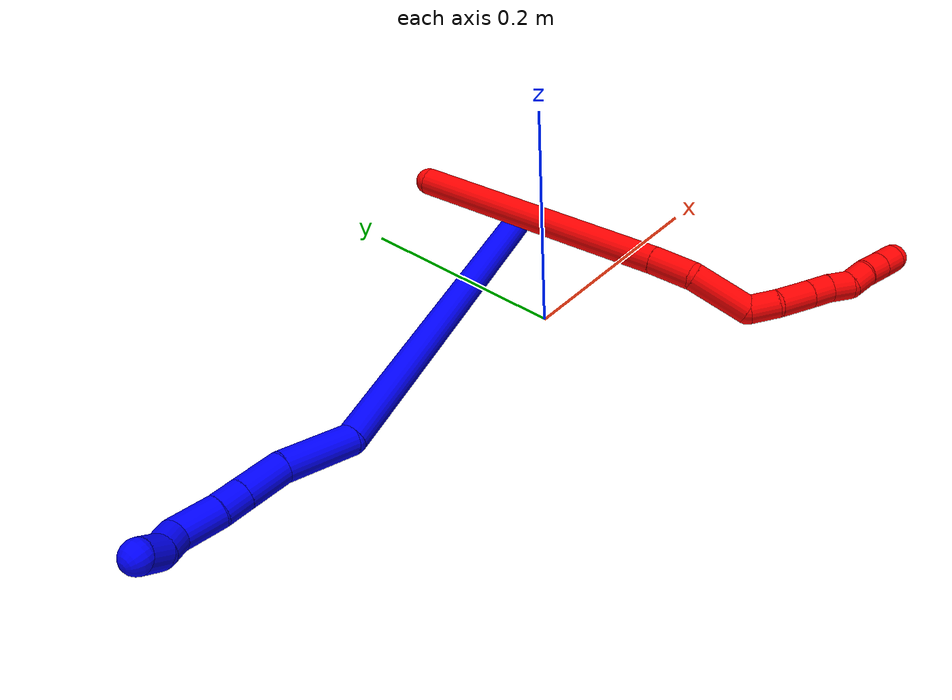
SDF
<sdf version="1.7">
 <world name="default">
  <model name="1">
   <static>0</static>
   <link name="1">
    <collision name="collision-cylinder-e_1_1_4">
     <pose>-0.03386 -0.010622 0.151337 0.070076 -0.21959 -0.007728</pose>
     <geometry><cylinder><radius>0.0125</radius><length>0.310884</length></cylinder></geometry>
     <surface>
      <friction><ode><mu>1.16</mu><mu2>1.16</mu2><slip1>0</slip1><slip2>0</slip2></ode></friction>
      <contact><ode><kp>1e+06</kp><kd>1</kd><max_vel>0</max_vel><min_depth>0.001</min_depth></ode></contact>
     </surface>
    </collision>
    <visual name="visual-cylinder-e_1_1_4">
     <pose>-0.03386 -0.010622 0.151337 0.070076 -0.21959 -0.007728</pose>
     <geometry><cylinder><radius>0.0125</radius><length>0.310884</length></cylinder></geometry>
     <material><ambient>0 0 1 1</ambient></material>
    </visual>
    <collision name="collision-cylinder-e_2_4_5">
     <pose>-0.06075 -0.018935 0.331298 -0.080514 0.238074 -0.009635</pose>
     <geometry><cylinder><radius>0.0125</radius><length>0.059103</length></cylinder></geometry>
     <surface>
      <friction><ode><mu>1.16</mu><mu2>1.16</mu2><slip1>0</slip1><slip2>0</slip2></ode></friction>
      <contact><ode><kp>1e+06</kp><kd>1</kd><max_vel>0</max_vel><min_depth>0.001</min_depth></ode></contact>
     </surface>
    </collision>
    <visual name="visual-cylinder-e_2_4_5">
     <pose>-0.06075 -0.018935 0.331298 -0.080514 0.238074 -0.009635</pose>
     <geometry><cylinder><radius>0.0125</radius><length>0.059103</length></cylinder></geometry>
     <material><ambient>0 0 1 1</ambient></material>
    </visual>
    <collision name="collision-cylinder-e_3_5_6">
     <pose>-0.053308 -0.015807 0.377663 -0.046092 0.026617 -0.000614</pose>
     <geometry><cylinder><radius>0.0125</radius><length>0.035529</length></cylinder></geometry>
     <surface>
      <friction><ode><mu>1.16</mu><mu2>1.16</mu2><slip1>0</slip1><slip2>0</slip2></ode></friction>
      <contact><ode><kp>1e+06</kp><kd>1</kd><max_vel>0</max_vel><min_depth>0.001</min_depth></ode></contact>
     </surface>
    </collision>
    <visual name="visual-cylinder-e_3_5_6">
     <pose>-0.053308 -0.015807 0.377663 -0.046092 0.026617 -0.000614</pose>
     <geometry><cylinder><radius>0.0125</radius><length>0.035529</length></cylinder></geometry>
     <material><ambient>0 0 1 1</ambient></material>
    </visual>
    <collision name="collision-cylinder-e_4_6_7">
     <pose>-0.052601 -0.014761 0.405688 -0.022123 0.022843 -0.000253</pose>
     <geometry><cylinder><radius>0.0125</radius><length>0.020581</length></cylinder></geometry>
     <surface>
      <friction><ode><mu>1.16</mu><mu2>1.16</mu2><slip1>0</slip1><slip2>0</slip2></ode></friction>
      <contact><ode><kp>1e+06</kp><kd>1</kd><max_vel>0</max_vel><min_depth>0.001</min_depth></ode></contact>
     </surface>
    </collision>
    <visual name="visual-cylinder-e_4_6_7">
     <pose>-0.052601 -0.014761 0.405688 -0.022123 0.022843 -0.000253</pose>
     <geometry><cylinder><radius>0.0125</radius><length>0.020581</length></cylinder></geometry>
     <material><ambient>0 0 1 1</ambient></material>
    </visual>
    <collision name="collision-cylinder-e_5_7_8">
     <pose>-0.050371 -0.01308 0.432483 -0.087859 0.119751 -0.00527</pose>
     <geometry><cylinder><radius>0.0125</radius><length>0.033388</length></cylinder></geometry>
     <surface>
      <friction><ode><mu>1.16</mu><mu2>1.16</mu2><slip1>0</slip1><slip2>0</slip2></ode></friction>
      <contact><ode><kp>1e+06</kp><kd>1</kd><max_vel>0</max_vel><min_depth>0.001</min_depth></ode></contact>
     </surface>
    </collision>
    <visual name="visual-cylinder-e_5_7_8">
     <pose>-0.050371 -0.01308 0.432483 -0.087859 0.119751 -0.00527</pose>
     <geometry><cylinder><radius>0.0125</radius><length>0.033388</length></cylinder></geometry>
     <material><ambient>0 0 1 1</ambient></material>
    </visual>
    <collision name="collision-cylinder-e_6_8_9">
     <pose>-0.049725 -0.016346 0.457891 0.487803 -0.132997 -0.033143</pose>
     <geometry><cylinder><radius>0.0125</radius><length>0.020324</length></cylinder></geometry>
     <surface>
      <friction><ode><mu>1.16</mu><mu2>1.16</mu2><slip1>0</slip1><slip2>0</slip2></ode></friction>
      <contact><ode><kp>1e+06</kp><kd>1</kd><max_vel>0</max_vel><min_depth>0.001</min_depth></ode></contact>
     </surface>
    </collision>
    <visual name="visual-cylinder-e_6_8_9">
     <pose>-0.049725 -0.016346 0.457891 0.487803 -0.132997 -0.033143</pose>
     <geometry><cylinder><radius>0.0125</radius><length>0.020324</length></cylinder></geometry>
     <material><ambient>0 0 1 1</ambient></material>
    </visual>
    <collision name="collision-cylinder-e_7_9_2">
     <pose>-0.048088 -0.026011 0.475069 0.538265 0.300073 0.083346</pose>
     <geometry><cylinder><radius>0.0125</radius><length>0.020192</length></cylinder></geometry>
     <surface>
      <friction><ode><mu>1.16</mu><mu2>1.16</mu2><slip1>0</slip1><slip2>0</slip2></ode></friction>
      <contact><ode><kp>1e+06</kp><kd>1</kd><max_vel>0</max_vel><min_depth>0.001</min_depth></ode></contact>
     </surface>
    </collision>
    <visual name="visual-cylinder-e_7_9_2">
     <pose>-0.048088 -0.026011 0.475069 0.538265 0.300073 0.083346</pose>
     <geometry><cylinder><radius>0.0125</radius><length>0.020192</length></cylinder></geometry>
     <material><ambient>0 0 1 1</ambient></material>
    </visual>
    <collision name="collision-sphere-2">
     <pose>-0.045104 -0.030955 0.48335 0 -0 0</pose>
     <geometry><sphere><radius>0.0125</radius></sphere></geometry>
     <surface>
      <friction><ode><mu>1.16</mu><mu2>1.16</mu2><slip1>0</slip1><slip2>0</slip2></ode></friction>
      <contact><ode><kp>1e+06</kp><kd>1</kd><max_vel>0</max_vel><min_depth>0.001</min_depth></ode></contact>
     </surface>
    </collision>
    <visual name="visual-sphere-2">
     <pose>-0.045104 -0.030955 0.48335 0 -0 0</pose>
     <geometry><sphere><radius>0.0125</radius></sphere></geometry>
     <material><ambient>0 0 1 1</ambient></material>
    </visual>
    <collision name="collision-sphere-9">
     <pose>-0.051072 -0.021067 0.466788 0 -0 0</pose>
     <geometry><sphere><radius>0.0125</radius></sphere></geometry>
     <surface>
      <friction><ode><mu>1.16</mu><mu2>1.16</mu2><slip1>0</slip1><slip2>0</slip2></ode></friction>
      <contact><ode><kp>1e+06</kp><kd>1</kd><max_vel>0</max_vel><min_depth>0.001</min_depth></ode></contact>
     </surface>
    </collision>
    <visual name="visual-sphere-9">
     <pose>-0.051072 -0.021067 0.466788 0 -0 0</pose>
     <geometry><sphere><radius>0.0125</radius></sphere></geometry>
     <material><ambient>0 0 1 1</ambient></material>
    </visual>
    <collision name="collision-sphere-4">
     <pose>-0.06772 -0.021245 0.302674 0 -0 0</pose>
     <geometry><sphere><radius>0.0125</radius></sphere></geometry>
     <surface>
      <friction><ode><mu>1.16</mu><mu2>1.16</mu2><slip1>0</slip1><slip2>0</slip2></ode></friction>
      <contact><ode><kp>1e+06</kp><kd>1</kd><max_vel>0</max_vel><min_depth>0.001</min_depth></ode></contact>
     </surface>
    </collision>
    <visual name="visual-sphere-4">
     <pose>-0.06772 -0.021245 0.302674 0 -0 0</pose>
     <geometry><sphere><radius>0.0125</radius></sphere></geometry>
     <material><ambient>0 0 1 1</ambient></material>
    </visual>
    <collision name="collision-sphere-1">
     <geometry><sphere><radius>0.0125</radius></sphere></geometry>
     <surface>
      <friction><ode><mu>1.16</mu><mu2>1.16</mu2><slip1>0</slip1><slip2>0</slip2></ode></friction>
      <contact><ode><kp>1e+06</kp><kd>1</kd><max_vel>0</max_vel><min_depth>0.001</min_depth></ode></contact>
     </surface>
    </collision>
    <visual name="visual-sphere-1">
     <geometry><sphere><radius>0.0125</radius></sphere></geometry>
     <material><ambient>0 0 1 1</ambient></material>
    </visual>
    <collision name="collision-sphere-8">
     <pose>-0.048377 -0.011625 0.448993 0 -0 0</pose>
     <geometry><sphere><radius>0.0125</radius></sphere></geometry>
     <surface>
      <friction><ode><mu>1.16</mu><mu2>1.16</mu2><slip1>0</slip1><slip2>0</slip2></ode></friction>
      <contact><ode><kp>1e+06</kp><kd>1</kd><max_vel>0</max_vel><min_depth>0.001</min_depth></ode></contact>
     </surface>
    </collision>
    <visual name="visual-sphere-8">
     <pose>-0.048377 -0.011625 0.448993 0 -0 0</pose>
     <geometry><sphere><radius>0.0125</radius></sphere></geometry>
     <material><ambient>0 0 1 1</ambient></material>
    </visual>
    <collision name="collision-sphere-5">
     <pose>-0.053781 -0.016626 0.359923 0 -0 0</pose>
     <geometry><sphere><radius>0.0125</radius></sphere></geometry>
     <surface>
      <friction><ode><mu>1.16</mu><mu2>1.16</mu2><slip1>0</slip1><slip2>0</slip2></ode></friction>
      <contact><ode><kp>1e+06</kp><kd>1</kd><max_vel>0</max_vel><min_depth>0.001</min_depth></ode></contact>
     </surface>
    </collision>
    <visual name="visual-sphere-5">
     <pose>-0.053781 -0.016626 0.359923 0 -0 0</pose>
     <geometry><sphere><radius>0.0125</radius></sphere></geometry>
     <material><ambient>0 0 1 1</ambient></material>
    </visual>
    <collision name="collision-sphere-6">
     <pose>-0.052836 -0.014989 0.395402 0 -0 0</pose>
     <geometry><sphere><radius>0.0125</radius></sphere></geometry>
     <surface>
      <friction><ode><mu>1.16</mu><mu2>1.16</mu2><slip1>0</slip1><slip2>0</slip2></ode></friction>
      <contact><ode><kp>1e+06</kp><kd>1</kd><max_vel>0</max_vel><min_depth>0.001</min_depth></ode></contact>
     </surface>
    </collision>
    <visual name="visual-sphere-6">
     <pose>-0.052836 -0.014989 0.395402 0 -0 0</pose>
     <geometry><sphere><radius>0.0125</radius></sphere></geometry>
     <material><ambient>0 0 1 1</ambient></material>
    </visual>
    <collision name="collision-sphere-7">
     <pose>-0.052366 -0.014534 0.415973 0 -0 0</pose>
     <geometry><sphere><radius>0.0125</radius></sphere></geometry>
     <surface>
      <friction><ode><mu>1.16</mu><mu2>1.16</mu2><slip1>0</slip1><slip2>0</slip2></ode></friction>
      <contact><ode><kp>1e+06</kp><kd>1</kd><max_vel>0</max_vel><min_depth>0.001</min_depth></ode></contact>
     </surface>
    </collision>
    <visual name="visual-sphere-7">
     <pose>-0.052366 -0.014534 0.415973 0 -0 0</pose>
     <geometry><sphere><radius>0.0125</radius></sphere></geometry>
     <material><ambient>0 0 1 1</ambient></material>
    </visual>
    <inertial>
     <pose>-0.041514 -0.013162 0.243469 0 -0 0</pose>
     <mass>0.5</mass>
     <inertia>
      <ixx>0.002466</ixx>
      <ixy>0</ixy>
      <ixz>0</ixz>
      <iyy>0.002522</iyy>
      <iyz>0</iyz>
      <izz>0.000751</izz>
     </inertia>
    </inertial>
   </link>
   <pose>0.086418 0.105026 0.011497 -1.43264 -0.747129 1.56791</pose>
  </model>
  <model name="2">
   <static>0</static>
   <link name="2">
    <collision name="collision-cylinder-e_1_1_4">
     <pose>0.00181 -0.098809 0.072326 0.938934 0.014782 0.007499</pose>
     <geometry><cylinder><radius>0.0125</radius><length>0.244929</length></cylinder></geometry>
     <surface>
      <friction><ode><mu>1.16</mu><mu2>1.16</mu2><slip1>0</slip1><slip2>0</slip2></ode></friction>
      <contact><ode><kp>1e+06</kp><kd>1</kd><max_vel>0</max_vel><min_depth>0.001</min_depth></ode></contact>
     </surface>
    </collision>
    <visual name="visual-cylinder-e_1_1_4">
     <pose>0.00181 -0.098809 0.072326 0.938934 0.014782 0.007499</pose>
     <geometry><cylinder><radius>0.0125</radius><length>0.244929</length></cylinder></geometry>
     <material><ambient>1 0 0 1</ambient></material>
    </visual>
    <collision name="collision-cylinder-e_2_4_5">
     <pose>0.004131 -0.214495 0.155416 1.00301 0.025502 0.013982</pose>
     <geometry><cylinder><radius>0.0125</radius><length>0.040048</length></cylinder></geometry>
     <surface>
      <friction><ode><mu>1.16</mu><mu2>1.16</mu2><slip1>0</slip1><slip2>0</slip2></ode></friction>
      <contact><ode><kp>1e+06</kp><kd>1</kd><max_vel>0</max_vel><min_depth>0.001</min_depth></ode></contact>
     </surface>
    </collision>
    <visual name="visual-cylinder-e_2_4_5">
     <pose>0.004131 -0.214495 0.155416 1.00301 0.025502 0.013982</pose>
     <geometry><cylinder><radius>0.0125</radius><length>0.040048</length></cylinder></geometry>
     <material><ambient>1 0 0 1</ambient></material>
    </visual>
    <collision name="collision-cylinder-e_3_5_6">
     <pose>0.015367 -0.247654 0.185288 0.705736 0.403757 0.150465</pose>
     <geometry><cylinder><radius>0.0125</radius><length>0.054598</length></cylinder></geometry>
     <surface>
      <friction><ode><mu>1.16</mu><mu2>1.16</mu2><slip1>0</slip1><slip2>0</slip2></ode></friction>
      <contact><ode><kp>1e+06</kp><kd>1</kd><max_vel>0</max_vel><min_depth>0.001</min_depth></ode></contact>
     </surface>
    </collision>
    <visual name="visual-cylinder-e_3_5_6">
     <pose>0.015367 -0.247654 0.185288 0.705736 0.403757 0.150465</pose>
     <geometry><cylinder><radius>0.0125</radius><length>0.054598</length></cylinder></geometry>
     <material><ambient>1 0 0 1</ambient></material>
    </visual>
    <collision name="collision-cylinder-e_4_6_7">
     <pose>0.023814 -0.266351 0.21722 0.186079 -0.172844 -0.016168</pose>
     <geometry><cylinder><radius>0.0125</radius><length>0.026495</length></cylinder></geometry>
     <surface>
      <friction><ode><mu>1.16</mu><mu2>1.16</mu2><slip1>0</slip1><slip2>0</slip2></ode></friction>
      <contact><ode><kp>1e+06</kp><kd>1</kd><max_vel>0</max_vel><min_depth>0.001</min_depth></ode></contact>
     </surface>
    </collision>
    <visual name="visual-cylinder-e_4_6_7">
     <pose>0.023814 -0.266351 0.21722 0.186079 -0.172844 -0.016168</pose>
     <geometry><cylinder><radius>0.0125</radius><length>0.026495</length></cylinder></geometry>
     <material><ambient>1 0 0 1</ambient></material>
    </visual>
    <collision name="collision-cylinder-e_5_7_8">
     <pose>0.020434 -0.26765 0.246345 -0.068286 -0.067302 0.0023</pose>
     <geometry><cylinder><radius>0.0125</radius><length>0.032749</length></cylinder></geometry>
     <surface>
      <friction><ode><mu>1.16</mu><mu2>1.16</mu2><slip1>0</slip1><slip2>0</slip2></ode></friction>
      <contact><ode><kp>1e+06</kp><kd>1</kd><max_vel>0</max_vel><min_depth>0.001</min_depth></ode></contact>
     </surface>
    </collision>
    <visual name="visual-cylinder-e_5_7_8">
     <pose>0.020434 -0.26765 0.246345 -0.068286 -0.067302 0.0023</pose>
     <geometry><cylinder><radius>0.0125</radius><length>0.032749</length></cylinder></geometry>
     <material><ambient>1 0 0 1</ambient></material>
    </visual>
    <collision name="collision-cylinder-e_6_8_9">
     <pose>0.018225 -0.266083 0.272897 -0.044145 -0.107483 0.002375</pose>
     <geometry><cylinder><radius>0.0125</radius><length>0.020645</length></cylinder></geometry>
     <surface>
      <friction><ode><mu>1.16</mu><mu2>1.16</mu2><slip1>0</slip1><slip2>0</slip2></ode></friction>
      <contact><ode><kp>1e+06</kp><kd>1</kd><max_vel>0</max_vel><min_depth>0.001</min_depth></ode></contact>
     </surface>
    </collision>
    <visual name="visual-cylinder-e_6_8_9">
     <pose>0.018225 -0.266083 0.272897 -0.044145 -0.107483 0.002375</pose>
     <geometry><cylinder><radius>0.0125</radius><length>0.020645</length></cylinder></geometry>
     <material><ambient>1 0 0 1</ambient></material>
    </visual>
    <collision name="collision-cylinder-e_7_9_10">
     <pose>0.016321 -0.266932 0.293205 0.128845 -0.078406 -0.005061</pose>
     <geometry><cylinder><radius>0.0125</radius><length>0.020342</length></cylinder></geometry>
     <surface>
      <friction><ode><mu>1.16</mu><mu2>1.16</mu2><slip1>0</slip1><slip2>0</slip2></ode></friction>
      <contact><ode><kp>1e+06</kp><kd>1</kd><max_vel>0</max_vel><min_depth>0.001</min_depth></ode></contact>
     </surface>
    </collision>
    <visual name="visual-cylinder-e_7_9_10">
     <pose>0.016321 -0.266932 0.293205 0.128845 -0.078406 -0.005061</pose>
     <geometry><cylinder><radius>0.0125</radius><length>0.020342</length></cylinder></geometry>
     <material><ambient>1 0 0 1</ambient></material>
    </visual>
    <collision name="collision-cylinder-e_8_10_11">
     <pose>0.012773 -0.265425 0.312551 -0.293783 -0.276233 0.041127</pose>
     <geometry><cylinder><radius>0.0125</radius><length>0.020177</length></cylinder></geometry>
     <surface>
      <friction><ode><mu>1.16</mu><mu2>1.16</mu2><slip1>0</slip1><slip2>0</slip2></ode></friction>
      <contact><ode><kp>1e+06</kp><kd>1</kd><max_vel>0</max_vel><min_depth>0.001</min_depth></ode></contact>
     </surface>
    </collision>
    <visual name="visual-cylinder-e_8_10_11">
     <pose>0.012773 -0.265425 0.312551 -0.293783 -0.276233 0.041127</pose>
     <geometry><cylinder><radius>0.0125</radius><length>0.020177</length></cylinder></geometry>
     <material><ambient>1 0 0 1</ambient></material>
    </visual>
    <collision name="collision-cylinder-e_9_11_12">
     <pose>0.009394 -0.259607 0.331363 -0.305923 -0.062779 0.009681</pose>
     <geometry><cylinder><radius>0.0125</radius><length>0.020011</length></cylinder></geometry>
     <surface>
      <friction><ode><mu>1.16</mu><mu2>1.16</mu2><slip1>0</slip1><slip2>0</slip2></ode></friction>
      <contact><ode><kp>1e+06</kp><kd>1</kd><max_vel>0</max_vel><min_depth>0.001</min_depth></ode></contact>
     </surface>
    </collision>
    <visual name="visual-cylinder-e_9_11_12">
     <pose>0.009394 -0.259607 0.331363 -0.305923 -0.062779 0.009681</pose>
     <geometry><cylinder><radius>0.0125</radius><length>0.020011</length></cylinder></geometry>
     <material><ambient>1 0 0 1</ambient></material>
    </visual>
    <collision name="collision-cylinder-e_10_12_2">
     <pose>0.007921 -0.2536 0.350391 -0.305597 -0.084631 0.013041</pose>
     <geometry><cylinder><radius>0.0125</radius><length>0.020007</length></cylinder></geometry>
     <surface>
      <friction><ode><mu>1.16</mu><mu2>1.16</mu2><slip1>0</slip1><slip2>0</slip2></ode></friction>
      <contact><ode><kp>1e+06</kp><kd>1</kd><max_vel>0</max_vel><min_depth>0.001</min_depth></ode></contact>
     </surface>
    </collision>
    <visual name="visual-cylinder-e_10_12_2">
     <pose>0.007921 -0.2536 0.350391 -0.305597 -0.084631 0.013041</pose>
     <geometry><cylinder><radius>0.0125</radius><length>0.020007</length></cylinder></geometry>
     <material><ambient>1 0 0 1</ambient></material>
    </visual>
    <collision name="collision-sphere-2">
     <pose>0.007075 -0.250601 0.359897 0 -0 0</pose>
     <geometry><sphere><radius>0.0125</radius></sphere></geometry>
     <surface>
      <friction><ode><mu>1.16</mu><mu2>1.16</mu2><slip1>0</slip1><slip2>0</slip2></ode></friction>
      <contact><ode><kp>1e+06</kp><kd>1</kd><max_vel>0</max_vel><min_depth>0.001</min_depth></ode></contact>
     </surface>
    </collision>
    <visual name="visual-sphere-2">
     <pose>0.007075 -0.250601 0.359897 0 -0 0</pose>
     <geometry><sphere><radius>0.0125</radius></sphere></geometry>
     <material><ambient>1 0 0 1</ambient></material>
    </visual>
    <collision name="collision-sphere-12">
     <pose>0.008766 -0.256599 0.340885 0 -0 0</pose>
     <geometry><sphere><radius>0.0125</radius></sphere></geometry>
     <surface>
      <friction><ode><mu>1.16</mu><mu2>1.16</mu2><slip1>0</slip1><slip2>0</slip2></ode></friction>
      <contact><ode><kp>1e+06</kp><kd>1</kd><max_vel>0</max_vel><min_depth>0.001</min_depth></ode></contact>
     </surface>
    </collision>
    <visual name="visual-sphere-12">
     <pose>0.008766 -0.256599 0.340885 0 -0 0</pose>
     <geometry><sphere><radius>0.0125</radius></sphere></geometry>
     <material><ambient>1 0 0 1</ambient></material>
    </visual>
    <collision name="collision-sphere-11">
     <pose>0.010022 -0.262614 0.321841 0 -0 0</pose>
     <geometry><sphere><radius>0.0125</radius></sphere></geometry>
     <surface>
      <friction><ode><mu>1.16</mu><mu2>1.16</mu2><slip1>0</slip1><slip2>0</slip2></ode></friction>
      <contact><ode><kp>1e+06</kp><kd>1</kd><max_vel>0</max_vel><min_depth>0.001</min_depth></ode></contact>
     </surface>
    </collision>
    <visual name="visual-sphere-11">
     <pose>0.010022 -0.262614 0.321841 0 -0 0</pose>
     <geometry><sphere><radius>0.0125</radius></sphere></geometry>
     <material><ambient>1 0 0 1</ambient></material>
    </visual>
    <collision name="collision-sphere-10">
     <pose>0.015525 -0.268235 0.303261 0 -0 0</pose>
     <geometry><sphere><radius>0.0125</radius></sphere></geometry>
     <surface>
      <friction><ode><mu>1.16</mu><mu2>1.16</mu2><slip1>0</slip1><slip2>0</slip2></ode></friction>
      <contact><ode><kp>1e+06</kp><kd>1</kd><max_vel>0</max_vel><min_depth>0.001</min_depth></ode></contact>
     </surface>
    </collision>
    <visual name="visual-sphere-10">
     <pose>0.015525 -0.268235 0.303261 0 -0 0</pose>
     <geometry><sphere><radius>0.0125</radius></sphere></geometry>
     <material><ambient>1 0 0 1</ambient></material>
    </visual>
    <collision name="collision-sphere-9">
     <pose>0.017118 -0.26563 0.28315 0 -0 0</pose>
     <geometry><sphere><radius>0.0125</radius></sphere></geometry>
     <surface>
      <friction><ode><mu>1.16</mu><mu2>1.16</mu2><slip1>0</slip1><slip2>0</slip2></ode></friction>
      <contact><ode><kp>1e+06</kp><kd>1</kd><max_vel>0</max_vel><min_depth>0.001</min_depth></ode></contact>
     </surface>
    </collision>
    <visual name="visual-sphere-9">
     <pose>0.017118 -0.26563 0.28315 0 -0 0</pose>
     <geometry><sphere><radius>0.0125</radius></sphere></geometry>
     <material><ambient>1 0 0 1</ambient></material>
    </visual>
    <collision name="collision-sphere-4">
     <pose>0.00362 -0.197619 0.144651 0 -0 0</pose>
     <geometry><sphere><radius>0.0125</radius></sphere></geometry>
     <surface>
      <friction><ode><mu>1.16</mu><mu2>1.16</mu2><slip1>0</slip1><slip2>0</slip2></ode></friction>
      <contact><ode><kp>1e+06</kp><kd>1</kd><max_vel>0</max_vel><min_depth>0.001</min_depth></ode></contact>
     </surface>
    </collision>
    <visual name="visual-sphere-4">
     <pose>0.00362 -0.197619 0.144651 0 -0 0</pose>
     <geometry><sphere><radius>0.0125</radius></sphere></geometry>
     <material><ambient>1 0 0 1</ambient></material>
    </visual>
    <collision name="collision-sphere-1">
     <geometry><sphere><radius>0.0125</radius></sphere></geometry>
     <surface>
      <friction><ode><mu>1.16</mu><mu2>1.16</mu2><slip1>0</slip1><slip2>0</slip2></ode></friction>
      <contact><ode><kp>1e+06</kp><kd>1</kd><max_vel>0</max_vel><min_depth>0.001</min_depth></ode></contact>
     </surface>
    </collision>
    <visual name="visual-sphere-1">
     <geometry><sphere><radius>0.0125</radius></sphere></geometry>
     <material><ambient>1 0 0 1</ambient></material>
    </visual>
    <collision name="collision-sphere-8">
     <pose>0.019333 -0.266535 0.262644 0 -0 0</pose>
     <geometry><sphere><radius>0.0125</radius></sphere></geometry>
     <surface>
      <friction><ode><mu>1.16</mu><mu2>1.16</mu2><slip1>0</slip1><slip2>0</slip2></ode></friction>
      <contact><ode><kp>1e+06</kp><kd>1</kd><max_vel>0</max_vel><min_depth>0.001</min_depth></ode></contact>
     </surface>
    </collision>
    <visual name="visual-sphere-8">
     <pose>0.019333 -0.266535 0.262644 0 -0 0</pose>
     <geometry><sphere><radius>0.0125</radius></sphere></geometry>
     <material><ambient>1 0 0 1</ambient></material>
    </visual>
    <collision name="collision-sphere-5">
     <pose>0.004642 -0.231372 0.16618 0 -0 0</pose>
     <geometry><sphere><radius>0.0125</radius></sphere></geometry>
     <surface>
      <friction><ode><mu>1.16</mu><mu2>1.16</mu2><slip1>0</slip1><slip2>0</slip2></ode></friction>
      <contact><ode><kp>1e+06</kp><kd>1</kd><max_vel>0</max_vel><min_depth>0.001</min_depth></ode></contact>
     </surface>
    </collision>
    <visual name="visual-sphere-5">
     <pose>0.004642 -0.231372 0.16618 0 -0 0</pose>
     <geometry><sphere><radius>0.0125</radius></sphere></geometry>
     <material><ambient>1 0 0 1</ambient></material>
    </visual>
    <collision name="collision-sphere-6">
     <pose>0.026092 -0.263936 0.204395 0 -0 0</pose>
     <geometry><sphere><radius>0.0125</radius></sphere></geometry>
     <surface>
      <friction><ode><mu>1.16</mu><mu2>1.16</mu2><slip1>0</slip1><slip2>0</slip2></ode></friction>
      <contact><ode><kp>1e+06</kp><kd>1</kd><max_vel>0</max_vel><min_depth>0.001</min_depth></ode></contact>
     </surface>
    </collision>
    <visual name="visual-sphere-6">
     <pose>0.026092 -0.263936 0.204395 0 -0 0</pose>
     <geometry><sphere><radius>0.0125</radius></sphere></geometry>
     <material><ambient>1 0 0 1</ambient></material>
    </visual>
    <collision name="collision-sphere-7">
     <pose>0.021535 -0.268765 0.230045 0 -0 0</pose>
     <geometry><sphere><radius>0.0125</radius></sphere></geometry>
     <surface>
      <friction><ode><mu>1.16</mu><mu2>1.16</mu2><slip1>0</slip1><slip2>0</slip2></ode></friction>
      <contact><ode><kp>1e+06</kp><kd>1</kd><max_vel>0</max_vel><min_depth>0.001</min_depth></ode></contact>
     </surface>
    </collision>
    <visual name="visual-sphere-7">
     <pose>0.021535 -0.268765 0.230045 0 -0 0</pose>
     <geometry><sphere><radius>0.0125</radius></sphere></geometry>
     <material><ambient>1 0 0 1</ambient></material>
    </visual>
    <inertial>
     <pose>0.008121 -0.177364 0.158847 0 -0 0</pose>
     <mass>0.5</mass>
     <inertia>
      <ixx>0.001281</ixx>
      <ixy>0</ixy>
      <ixz>0</ixz>
      <iyy>0.000751</iyy>
      <iyz>0</iyz>
      <izz>0.001015</izz>
     </inertia>
    </inertial>
   </link>
   <pose>0.061166 0.192837 0.036157 -2.45289 1.4407 -2.97043</pose>
  </model>
 </world>
</sdf>
